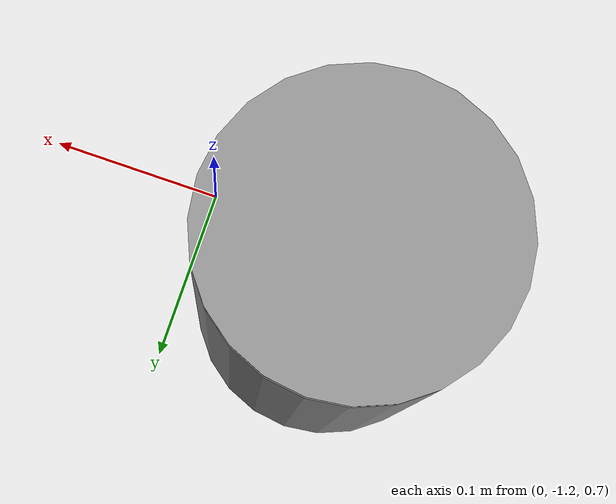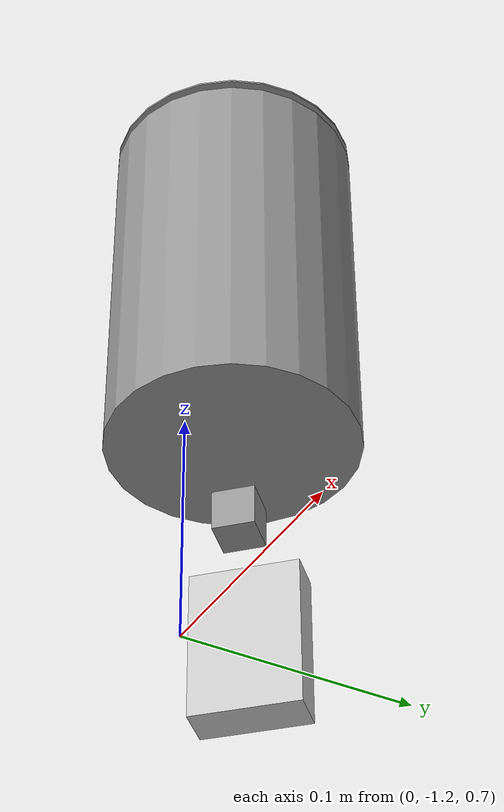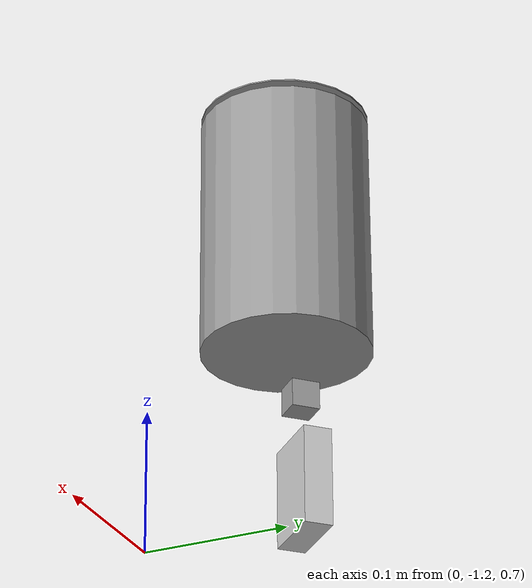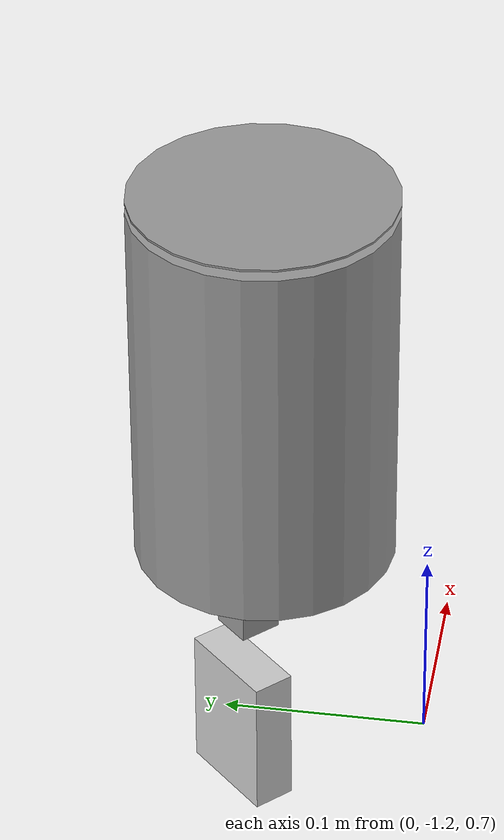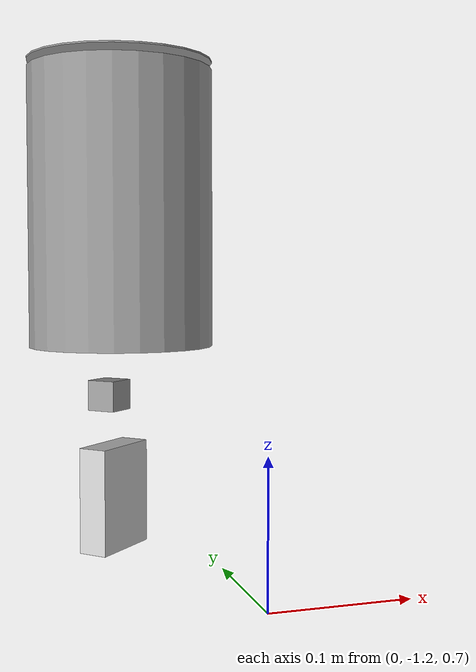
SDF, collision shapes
<sdf version='1.5'>
  <model name='arm_and_hand'>
     <link name='shadowarm_handsupport'>
      <pose>-0.08 -1.134 1.0465 -3.14159 2.06823e-13 -3.14159</pose>
      <inertial>
        <pose>0 0 0.072 0 -0 0</pose>
        <mass>3.75</mass>
        <inertia>
          <ixx>0.00596</ixx>
          <ixy>1.73472e-18</ixy>
          <ixz>0</ixz>
          <iyy>0.00596</iyy>
          <iyz>0</iyz>
          <izz>0.0011</izz>
        </inertia>
      </inertial>
      <collision name='shadowarm_handsupport_collision'>
        <pose>0 0 -0.005 0 -0 0</pose>
        <geometry>
          <cylinder>
            <length>0.001</length>
            <radius>0.06</radius>
          </cylinder>
        </geometry>
        <surface>
          <contact>
            <ode/>
          </contact>
          <friction>
            <ode/>
          </friction>
        </surface>
      </collision>
      <collision name='shadowarm_handsupport_collision_forearm'>
        <pose>0 0 0.09 0 -0 2.35619</pose>
        <geometry>
          <cylinder>
            <length>0.18</length>
            <radius>0.06</radius>
          </cylinder>
        </geometry>
        <surface>
          <contact>
            <ode/>
          </contact>
          <friction>
            <ode/>
          </friction>
        </surface>
        <surface>
          <contact>
            <ode/>
          </contact>
          <friction>
            <ode/>
          </friction>
        </surface>
      </collision>
      <visual name='shadowarm_handsupport_visual'>
        <pose>0 0 -0.04 0 -0 0</pose>
        <geometry>
          <mesh>
            <scale>0.001 0.001 0.001</scale>
            <uri>sr_description/arm/model/elbow_rotate_motor.dae</uri>
          </mesh>
        </geometry>
        <material>
          <script>
            <name>Gazebo/Grey</name>
            <uri>__default__</uri>
          </script>
        </material>
      </visual>
      <visual name='shadowarm_handsupport_visual_forearm'>
        <pose>0 0 0 0 -0 2.35619</pose>
        <geometry>
          <box>
            <size>0.10 0.04 0.14</size>
          </box>
        </geometry>
        <material>
          <script>
            <name>LightGrey</name>
            <uri>__default__</uri>
          </script>
        </material>
      </visual>
      <velocity_decay>
        <linear>0</linear>
        <angular>0</angular>
      </velocity_decay>
      <gravity>1</gravity>
      <velocity_decay>
        <linear>0</linear>
        <angular>0</angular>
      </velocity_decay>
      <self_collide>0</self_collide>
    </link>
    <joint name='ElbowJRotate' type='revolute'>
      <child>shadowarm_handsupport</child>
      <parent>world</parent>
      <axis>
        <xyz>-2.06823e-13 0 1</xyz>
        <limit>
          <lower>-1.5708</lower>
          <upper>1.5708</upper>
          <effort>1000</effort>
          <velocity>10</velocity>
        </limit>
        <dynamics>
          <damping>30</damping>
          <spring_reference>0</spring_reference>
          <spring_stiffness>0</spring_stiffness>
        </dynamics>
        <use_parent_model_frame>1</use_parent_model_frame>
      </axis>
      <physics>
        <provide_feedback>1</provide_feedback>
        <ode>
          <provide_feedback>1</provide_feedback>
          <implicit_spring_damper>1</implicit_spring_damper>
          <cfm_damping>1</cfm_damping>
          <limit>
            <cfm>0</cfm>
            <erp>0.2</erp>
          </limit>
        </ode>
      </physics>
    </joint>
    <link name='wrist'>
      <pose>-0.0870711 -1.12693 0.8335 3.14159 -1.46246e-13 0.785398</pose>
      <inertial>
        <pose>0 0 0 0 -0 0</pose>
        <mass>0.1</mass>
        <inertia>
          <ixx>0.00012</ixx>
          <ixy>0</ixy>
          <ixz>0</ixz>
          <iyy>0.000148</iyy>
          <iyz>0</iyz>
          <izz>4.38e-05</izz>
        </inertia>
      </inertial>
      <collision name='wrist_collision'>
        <pose>0 0 0 0 -0 0</pose>
        <geometry>
          <box>
            <size>0.02 0.02 0.02</size>
          </box>
        </geometry>
        <surface>
          <contact>
            <ode/>
          </contact>
          <friction>
            <ode/>
          </friction>
        </surface>
      </collision>
      <visual name='wrist_visual'>
        <pose>0 0 0 0 -0 0</pose>
        <geometry>
          <mesh>
            <scale>0.001 0.001 0.001</scale>
            <uri>sr_description/hand/model/wrist.dae</uri>
          </mesh>
        </geometry>
        <material>
          <script>
            <name>PR2/Grey2</name>
            <uri>__default__</uri>
          </script>
        </material>
      </visual>
      <gravity>1</gravity>
      <velocity_decay>
        <linear>0</linear>
        <angular>0</angular>
      </velocity_decay>
      <self_collide>0</self_collide>
    </link>
    <joint name='WRJ2' type='revolute'>
      <child>wrist</child>
      <parent>shadowarm_handsupport</parent>
      <axis>
        <xyz>0.707107 -0.707107 1.46246e-13</xyz>
        <limit>
          <lower>-0.523599</lower>
          <upper>0.174533</upper>
          <effort>1000</effort>
          <velocity>10</velocity>
        </limit>
        <dynamics>
          <damping>30</damping>
          <spring_reference>0</spring_reference>
          <spring_stiffness>0</spring_stiffness>
        </dynamics>
        <use_parent_model_frame>1</use_parent_model_frame>
      </axis>
      <physics>
        <provide_feedback>1</provide_feedback>
        <ode>
          <provide_feedback>1</provide_feedback>
          <implicit_spring_damper>1</implicit_spring_damper>
          <cfm_damping>1</cfm_damping>
          <limit>
            <cfm>0</cfm>
            <erp>0.2</erp>
          </limit>
        </ode>
      </physics>
    </joint>
    <link name='palm'>
      <pose>-0.0870711 -1.12693 0.7995 3.14159 -1.46246e-13 0.785398</pose>
      <inertial>
        <pose>0 0 0.035 0 -0 0</pose>
        <mass>0.3</mass>
        <inertia>
          <ixx>0.0005</ixx>
          <ixy>0</ixy>
          <ixz>0</ixz>
          <iyy>0.0005</iyy>
          <iyz>0</iyz>
          <izz>0.0003</izz>
        </inertia>
      </inertial>
      <collision name='palm_collision'>
        <pose>0.005 0 0.035 0 -0 0</pose>
        <geometry>
          <box>
            <size>0.05 0.02 0.07</size>
          </box>
        </geometry>
        <surface>
          <contact>
            <ode/>
          </contact>
          <friction>
            <ode/>
          </friction>
        </surface>
      </collision>
      <visual name='palm_visual'>
        <pose>0.005 0 0.035 0 -0 0</pose>
        <geometry>
          <box>
            <size>0.05 0.02 0.07</size>
          </box>
        </geometry>
        <material>
          <script>
            <name>LightGrey</name>
            <uri>__default__</uri>
          </script>
        </material>
      </visual>
      <gravity>1</gravity>
      <velocity_decay>
        <linear>0</linear>
        <angular>0</angular>
      </velocity_decay>
      <self_collide>0</self_collide>
      <sensor name='palm_contact' type='contact'>
        <always_on>1</always_on>
        <update_rate>1000</update_rate>
        <contact>
          <collision>palm_collision</collision>
          <topic>palm_collision</topic>
        </contact>
        <plugin name='palm_gazebo_ros_bumper_controller' filename='libgazebo_ros_bumper.so'>
          <updateRate>100.0</updateRate>
          <frameName>palm</frameName>
          <bumperTopicName>contacts/palm</bumperTopicName>
        </plugin>
      </sensor>
    </link>
    <joint name='WRJ1' type='revolute'>
      <child>palm</child>
      <parent>wrist</parent>
      <axis>
        <xyz>0.707107 0.707107 1.46246e-13</xyz>
        <limit>
          <lower>-0.7854</lower>
          <upper>0.5236</upper>
          <effort>1000</effort>
          <velocity>10</velocity>
        </limit>
        <dynamics>
          <damping>30</damping>
          <spring_reference>0</spring_reference>
          <spring_stiffness>0</spring_stiffness>
        </dynamics>
        <use_parent_model_frame>1</use_parent_model_frame>
      </axis>
      <physics>
        <provide_feedback>1</provide_feedback>
        <ode>
          <provide_feedback>1</provide_feedback>
          <implicit_spring_damper>1</implicit_spring_damper>
          <cfm_damping>1</cfm_damping>
          <limit>
            <cfm>0</cfm>
            <erp>0.2</erp>
          </limit>
        </ode>
      </physics>
    </joint>
  </model>
</sdf>
